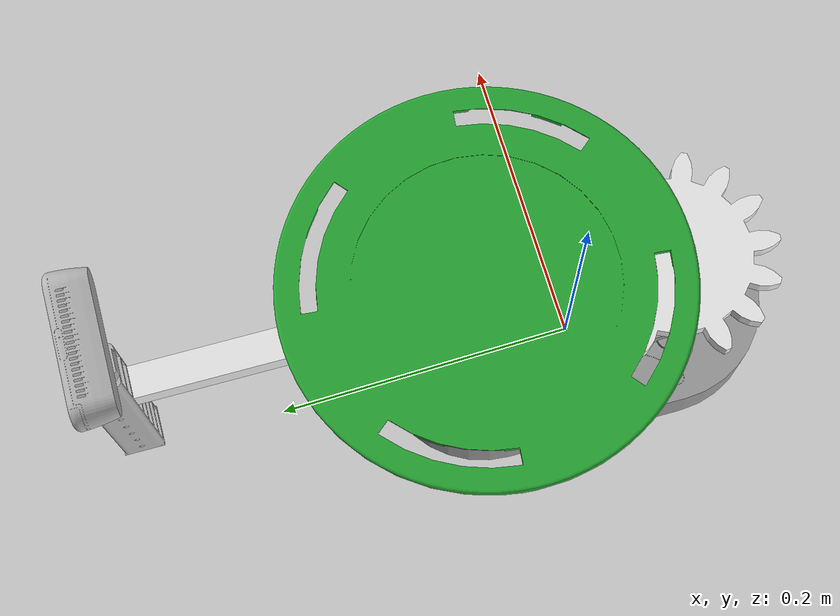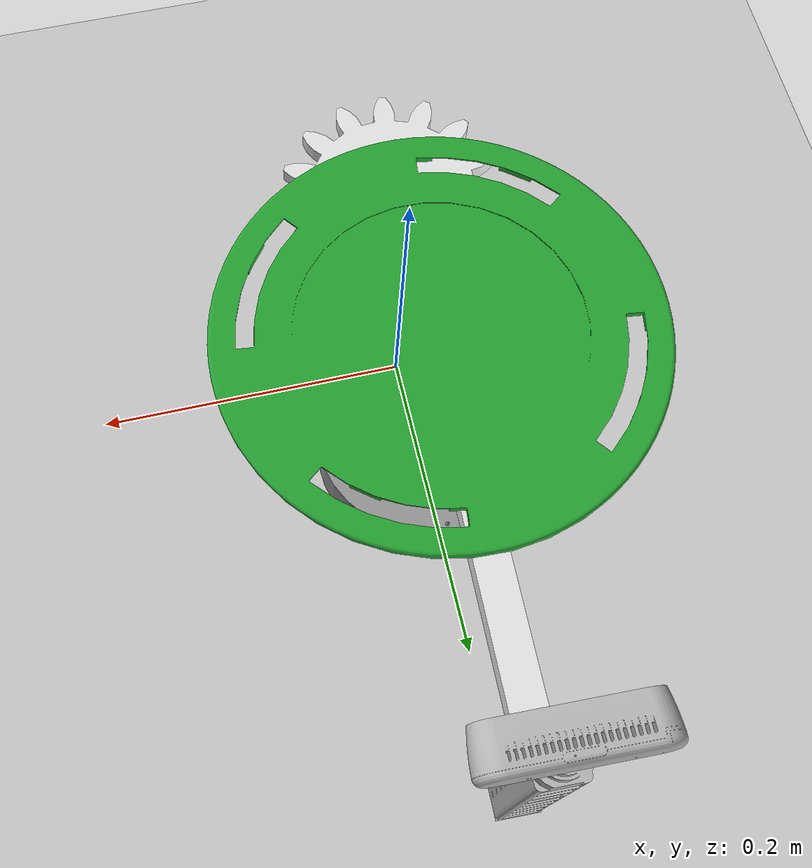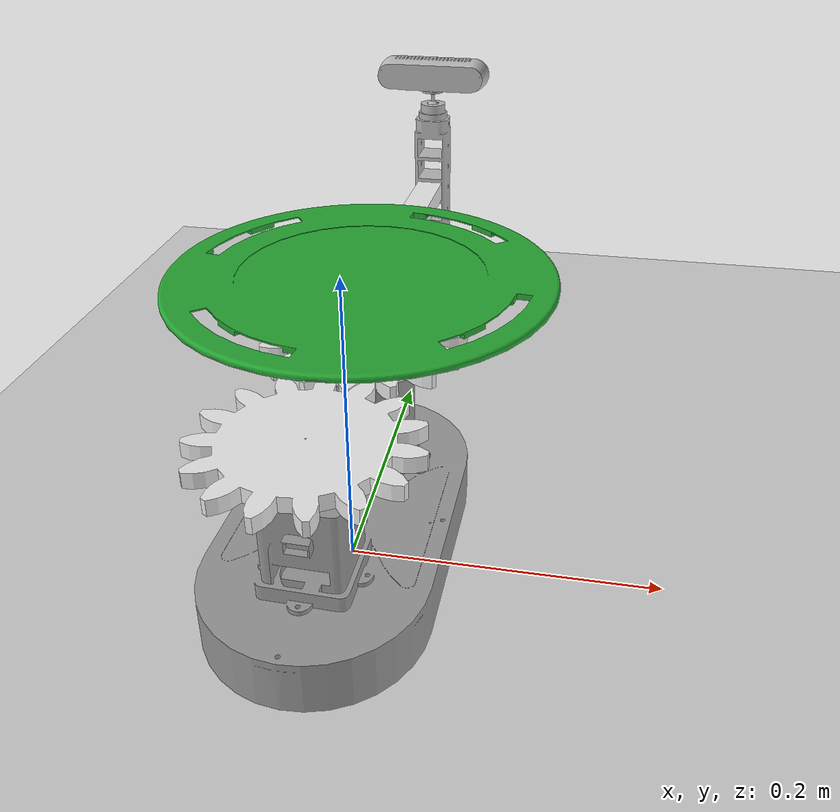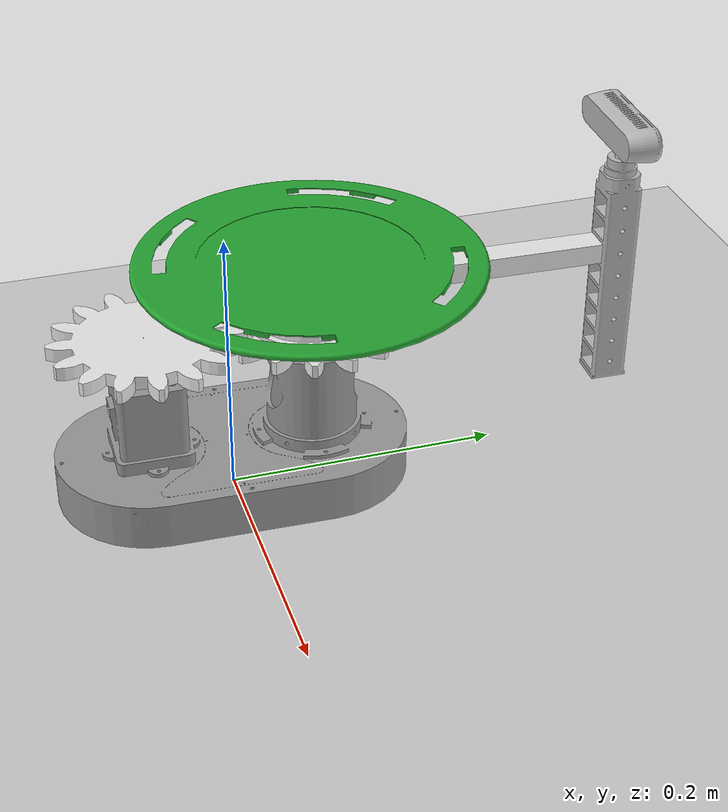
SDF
<sdf version="1.7">
 <world name="default">
  <light name="sun" type="directional">
   <pose>0 0 10 0 -0 0</pose>
   <diffuse>0.8 0.8 0.8 1</diffuse>
   <specular>0.2 0.2 0.2 1</specular>
   <attenuation>
    <range>1000</range>
    <constant>0.9</constant>
    <linear>0.01</linear>
    <quadratic>0.001</quadratic>
   </attenuation>
   <direction>-0.5 0.1 -0.9</direction>
   <spot><inner_angle>0</inner_angle><outer_angle>0</outer_angle><falloff>0</falloff></spot>
  </light>
  <model name="ground_plane">
   <static>1</static>
   <link name="link">
    <collision name="collision">
     <geometry><plane><normal>0 0 1</normal><size>100 100</size></plane></geometry>
     <surface>
      <contact><collide_bitmask>65535</collide_bitmask></contact>
      <friction><ode><mu>100</mu><mu2>50</mu2></ode></friction>
     </surface>
    </collision>
    <visual name="visual">
     <cast_shadows>0</cast_shadows>
     <geometry><plane><normal>0 0 1</normal><size>100 100</size></plane></geometry>
     <material>
      <script><uri>file://media/materials/scripts/gazebo.material</uri><name>Gazebo/Grey</name></script>
     </material>
    </visual>
   </link>
  </model>
  <gravity>0 0 -9.8</gravity>
  <magnetic_field>6e-06 2.3e-05 -4.2e-05</magnetic_field>
  <atmosphere type="adiabatic"/>
  <physics type="ode">
   <max_step_size>0.001</max_step_size>
   <real_time_factor>1</real_time_factor>
   <real_time_update_rate>1000</real_time_update_rate>
  </physics>
  <scene><ambient>0.4 0.4 0.4 1</ambient><background>0.7 0.7 0.7 1</background><shadows>1</shadows></scene>
  <spherical_coordinates>
   <surface_model>EARTH_WGS84</surface_model>
   <latitude_deg>0</latitude_deg>
   <longitude_deg>0</longitude_deg>
   <elevation>0</elevation>
   <heading_deg>0</heading_deg>
  </spherical_coordinates>
  <model name="scanner_3d_new">
   <link name="dummy">
    <inertial>
     <pose>0.000351 0.005724 0.041691 0 -0 0</pose>
     <mass>0.844175</mass>
     <inertia>
      <ixx>0.00325337</ixx>
      <ixy>-1.21224e-08</ixy>
      <ixz>-3.30766e-06</ixz>
      <iyy>0.00117607</iyy>
      <iyz>-4.1475e-08</iyz>
      <izz>0.00418042</izz>
     </inertia>
    </inertial>
    <collision name="dummy_fixed_joint_lump__base_link_collision">
     <geometry>
      <mesh>
       <scale>1 1 1</scale>
       <uri>/home/live4jesus/ncat_kinovaGen3_catkin_ws/src/scanner_3d_new/meshes/base_link.STL</uri>
      </mesh>
     </geometry>
    </collision>
    <visual name="dummy_fixed_joint_lump__base_link_visual">
     <geometry>
      <mesh>
       <scale>1 1 1</scale>
       <uri>/home/live4jesus/ncat_kinovaGen3_catkin_ws/src/scanner_3d_new/meshes/base_link.STL</uri>
      </mesh>
     </geometry>
     <material>
      <script><name>Gazebo/Gray</name><uri>file://media/materials/scripts/gazebo.material</uri></script>
     </material>
    </visual>
   </link>
   <joint name="joint_1" type="revolute">
    <pose relative_to="dummy">0 -0.06 0.125 0 -0 0</pose>
    <parent>dummy</parent>
    <child>link_1</child>
    <axis>
     <xyz>0 0 -1</xyz>
     <limit><effort>10</effort><velocity>5</velocity><lower>-1e+16</lower><upper>1e+16</upper></limit>
     <dynamics><spring_reference>0</spring_reference><spring_stiffness>0</spring_stiffness></dynamics>
    </axis>
   </joint>
   <link name="link_1">
    <pose relative_to="joint_1">0 0 0 0 -0 0</pose>
    <inertial>
     <pose>1e-06 -0 -0.000476 0 -0 0</pose>
     <mass>0.114546</mass>
     <inertia>
      <ixx>9.99335e-05</ixx>
      <ixy>1.86864e-11</ixy>
      <ixz>5.22432e-10</ixz>
      <iyy>9.99337e-05</iyy>
      <iyz>-5.12278e-11</iyz>
      <izz>0.00019798</izz>
     </inertia>
    </inertial>
    <collision name="link_1_collision">
     <geometry>
      <mesh>
       <scale>1 1 1</scale>
       <uri>/home/live4jesus/ncat_kinovaGen3_catkin_ws/src/scanner_3d_new/meshes/link_1.STL</uri>
      </mesh>
     </geometry>
    </collision>
    <visual name="link_1_visual">
     <geometry>
      <mesh>
       <scale>1 1 1</scale>
       <uri>/home/live4jesus/ncat_kinovaGen3_catkin_ws/src/scanner_3d_new/meshes/link_1.STL</uri>
      </mesh>
     </geometry>
     <material>
      <script><name>Gazebo/White</name><uri>file://media/materials/scripts/gazebo.material</uri></script>
     </material>
    </visual>
   </link>
   <joint name="joint_2" type="revolute">
    <pose relative_to="dummy">0 0.06 0.125 0 -0 0</pose>
    <parent>dummy</parent>
    <child>link_2</child>
    <axis>
     <xyz>0 0 1</xyz>
     <limit><effort>10</effort><velocity>5</velocity><lower>-1e+16</lower><upper>1e+16</upper></limit>
     <dynamics><spring_reference>0</spring_reference><spring_stiffness>0</spring_stiffness></dynamics>
    </axis>
   </joint>
   <link name="link_2">
    <pose relative_to="joint_2">0 0 0 0 -0 0</pose>
    <inertial>
     <pose>-0 0.09095 0.012895 0 -0 0</pose>
     <mass>0.179963</mass>
     <inertia>
      <ixx>0.00197844</ixx>
      <ixy>5.08997e-12</ixy>
      <ixz>2.55475e-12</ixz>
      <iyy>0.000230755</iyy>
      <iyz>-4.10824e-05</iyz>
      <izz>0.00197874</izz>
     </inertia>
    </inertial>
    <collision name="link_2_collision">
     <geometry>
      <mesh>
       <scale>1 1 1</scale>
       <uri>/home/live4jesus/ncat_kinovaGen3_catkin_ws/src/scanner_3d_new/meshes/link_2.STL</uri>
      </mesh>
     </geometry>
    </collision>
    <collision name="link_2_fixed_joint_lump__link_4_collision_1">
     <pose>0 0.24185 0.0275 0 -0 0</pose>
     <geometry>
      <mesh>
       <scale>1 1 1</scale>
       <uri>/home/live4jesus/ncat_kinovaGen3_catkin_ws/src/scanner_3d_new/meshes/link_4.STL</uri>
      </mesh>
     </geometry>
    </collision>
    <visual name="link_2_visual">
     <geometry>
      <mesh>
       <scale>1 1 1</scale>
       <uri>/home/live4jesus/ncat_kinovaGen3_catkin_ws/src/scanner_3d_new/meshes/link_2.STL</uri>
      </mesh>
     </geometry>
     <material>
      <script><name>Gazebo/White</name><uri>file://media/materials/scripts/gazebo.material</uri></script>
     </material>
    </visual>
    <visual name="link_2_fixed_joint_lump__link_4_visual_1">
     <pose>0 0.24185 0.0275 0 -0 0</pose>
     <geometry>
      <mesh>
       <scale>1 1 1</scale>
       <uri>/home/live4jesus/ncat_kinovaGen3_catkin_ws/src/scanner_3d_new/meshes/link_4.STL</uri>
      </mesh>
     </geometry>
    </visual>
   </link>
   <joint name="joint_5" type="revolute">
    <pose relative_to="link_2">0 0.22875 0.09625 0 -0 0</pose>
    <parent>link_2</parent>
    <child>link_5</child>
    <axis>
     <xyz>0 0 1</xyz>
     <limit><effort>10</effort><velocity>5</velocity><lower>-1e+16</lower><upper>1e+16</upper></limit>
     <dynamics><spring_reference>0</spring_reference><spring_stiffness>0</spring_stiffness></dynamics>
    </axis>
   </joint>
   <link name="link_5">
    <pose relative_to="joint_5">0 0 0 0 -0 0</pose>
    <inertial>
     <pose>-0 0 0.006835 0 -0 0</pose>
     <mass>0.0111635</mass>
     <inertia>
      <ixx>6.15728e-08</ixx>
      <ixy>1.47487e-41</ixy>
      <ixz>4.0739e-24</ixz>
      <iyy>6.15728e-08</iyy>
      <iyz>-2.95268e-29</iyz>
      <izz>2.60459e-08</izz>
     </inertia>
    </inertial>
    <collision name="link_5_collision">
     <geometry>
      <mesh>
       <scale>1 1 1</scale>
       <uri>/home/live4jesus/ncat_kinovaGen3_catkin_ws/src/scanner_3d_new/meshes/link_5.STL</uri>
      </mesh>
     </geometry>
    </collision>
    <visual name="link_5_visual">
     <geometry>
      <mesh>
       <scale>1 1 1</scale>
       <uri>/home/live4jesus/ncat_kinovaGen3_catkin_ws/src/scanner_3d_new/meshes/link_5.STL</uri>
      </mesh>
     </geometry>
    </visual>
   </link>
   <joint name="joint_6" type="revolute">
    <pose relative_to="link_5">0 -0.0022 0.0265 0 -0 0</pose>
    <parent>link_5</parent>
    <child>link_6</child>
    <axis>
     <xyz>-1 0 0</xyz>
     <limit><effort>10</effort><velocity>5</velocity><lower>-1e+16</lower><upper>1e+16</upper></limit>
     <dynamics><spring_reference>0</spring_reference><spring_stiffness>0</spring_stiffness></dynamics>
    </axis>
   </joint>
   <link name="link_6">
    <pose relative_to="joint_6">0 0 0 0 -0 0</pose>
    <inertial>
     <pose>0.000163 0.00307 -0.000872 0 -0 0</pose>
     <mass>0.0644521</mass>
     <inertia>
      <ixx>5.24563e-06</ixx>
      <ixy>-2.07171e-07</ixy>
      <ixz>-6.06634e-09</ixz>
      <iyy>3.16674e-05</iyy>
      <iyz>3.04727e-07</iyz>
      <izz>3.27606e-05</izz>
     </inertia>
    </inertial>
    <collision name="link_6_collision">
     <geometry>
      <mesh>
       <scale>1 1 1</scale>
       <uri>/home/live4jesus/ncat_kinovaGen3_catkin_ws/src/scanner_3d_new/meshes/link_6.STL</uri>
      </mesh>
     </geometry>
    </collision>
    <visual name="link_6_visual">
     <geometry>
      <mesh>
       <scale>1 1 1</scale>
       <uri>/home/live4jesus/ncat_kinovaGen3_catkin_ws/src/scanner_3d_new/meshes/link_6.STL</uri>
      </mesh>
     </geometry>
    </visual>
    <sensor name="rgbd_camera1_frame_sensor" type="depth">
     <always_on>1</always_on>
     <update_rate>6</update_rate>
     <camera>
      <horizontal_fov>1.01229</horizontal_fov>
      <image><format>R8G8B8</format><width>800</width><height>600</height></image>
      <clip><near>0.05</near><far>5</far></clip>
     </camera>
     <plugin name="rgbd_camera1_frame_controller" filename="libgazebo_ros_openni_kinect.so">
      <alwaysOn>1</alwaysOn>
      <updateRate>6.0</updateRate>
      <cameraName>rgbd_camera1</cameraName>
      <imageTopicName>ir/image_raw</imageTopicName>
      <cameraInfoTopicName>ir/camera_info</cameraInfoTopicName>
      <depthImageTopicName>depth/image_raw</depthImageTopicName>
      <depthImageCameraInfoTopicName>depth/camera_info</depthImageCameraInfoTopicName>
      <pointCloudTopicName>depth/points</pointCloudTopicName>
      <frameName>rgbd_camera1_optical_frame</frameName>
      <pointCloudCutoff>0.05</pointCloudCutoff>
      <pointCloudCutoffMax>5</pointCloudCutoffMax>
      <rangeMax>5</rangeMax>
      <robotNamespace>/</robotNamespace>
     </plugin>
     <pose>0 0 0 -0.001593 0.001593 -1.57159</pose>
    </sensor>
    <sensor name="rgbd_camera1_frame_sensor" type="depth">
     <always_on>1</always_on>
     <update_rate>6</update_rate>
     <camera>
      <horizontal_fov>1.01229</horizontal_fov>
      <image><format>R8G8B8</format><width>800</width><height>600</height></image>
      <clip><near>0.05</near><far>5</far></clip>
     </camera>
     <plugin name="rgbd_camera1_frame_controller" filename="libgazebo_ros_openni_kinect.so">
      <alwaysOn>1</alwaysOn>
      <updateRate>6.0</updateRate>
      <cameraName>rgbd_camera1</cameraName>
      <imageTopicName>rgb/image_raw</imageTopicName>
      <cameraInfoTopicName>rgb/camera_info</cameraInfoTopicName>
      <pointCloudTopicName>rgb/points</pointCloudTopicName>
      <depthImageTopicName>depth/image_raw</depthImageTopicName>
      <depthImageCameraInfoTopicName>depth/camera_info</depthImageCameraInfoTopicName>
      <frameName>rgbd_camera1_optical_frame</frameName>
      <pointCloudCutoff>0.05</pointCloudCutoff>
      <pointCloudCutoffMax>5</pointCloudCutoffMax>
      <rangeMax>5</rangeMax>
      <robotNamespace>/</robotNamespace>
     </plugin>
     <pose>0 0 0 -0.001593 0.001593 -1.57159</pose>
    </sensor>
   </link>
   <joint name="joint_3" type="revolute">
    <pose relative_to="dummy">0 0.06 0.137 0 -0 0</pose>
    <parent>dummy</parent>
    <child>link_3</child>
    <axis>
     <xyz>0 0 1</xyz>
     <limit><effort>10</effort><velocity>5</velocity><lower>-1e+16</lower><upper>1e+16</upper></limit>
     <dynamics><spring_reference>0</spring_reference><spring_stiffness>0</spring_stiffness></dynamics>
    </axis>
   </joint>
   <link name="link_3">
    <pose relative_to="joint_3">0 0 0 0 -0 0</pose>
    <inertial>
     <pose>-0 -0 0.031314 0 -0 0</pose>
     <mass>0.165079</mass>
     <inertia>
      <ixx>0.00046672</ixx>
      <ixy>-7.29772e-09</ixy>
      <ixz>-2.93963e-10</ixz>
      <iyy>0.000466697</iyy>
      <iyz>-4.36207e-10</iyz>
      <izz>0.000931288</izz>
     </inertia>
    </inertial>
    <collision name="link_3_collision">
     <geometry>
      <mesh>
       <scale>1 1 1</scale>
       <uri>/home/live4jesus/ncat_kinovaGen3_catkin_ws/src/scanner_3d_new/meshes/link_3.STL</uri>
      </mesh>
     </geometry>
    </collision>
    <visual name="link_3_visual">
     <geometry>
      <mesh>
       <scale>1 1 1</scale>
       <uri>/home/live4jesus/ncat_kinovaGen3_catkin_ws/src/scanner_3d_new/meshes/link_3.STL</uri>
      </mesh>
     </geometry>
     <material>
      <script><name>Gazebo/Green</name><uri>file://media/materials/scripts/gazebo.material</uri></script>
     </material>
    </visual>
   </link>
   <plugin name="control" filename="libgazebo_ros_control.so"><robotNamespace>/</robotNamespace></plugin>
   <plugin name="joint_state_publisher" filename="libgazebo_ros_joint_state_publisher.so">
    <robotNamespace>/</robotNamespace>
   </plugin>
   <frame name="dummy_joint" attached_to="dummy"/>
   <frame name="base_link" attached_to="dummy_joint"/>
   <frame name="joint_4" attached_to="link_2"><pose>0 0.24185 0.0275 0 -0 0</pose></frame>
   <frame name="link_4" attached_to="joint_4"/>
   <frame name="rgbd_camera1_depth_optical_joint" attached_to="rgbd_camera1_depth_frame">
    <pose>0 0 0 -1.5708 -0 -1.5708</pose>
   </frame>
   <frame name="rgbd_camera1_depth_optical_frame" attached_to="rgbd_camera1_depth_optical_joint"/>
   <frame name="rgbd_camera1_depth_joint" attached_to="rgbd_camera1"><pose>0 0.049 0 0 -0 0</pose></frame>
   <frame name="rgbd_camera1_depth_frame" attached_to="rgbd_camera1_depth_joint"/>
   <frame name="rgbd_camera1_optical_joint" attached_to="rgbd_camera1"><pose>0 0 0 -1.57 -0 -1.57</pose></frame>
   <frame name="rgbd_camera1_optical_frame" attached_to="rgbd_camera1_optical_joint"/>
   <frame name="rgbd_camera1_rgb_optical_joint" attached_to="rgbd_camera1_rgb_frame">
    <pose>0 0 0 -1.5708 -0 -1.5708</pose>
   </frame>
   <frame name="rgbd_camera1_rgb_optical_frame" attached_to="rgbd_camera1_rgb_optical_joint"/>
   <frame name="rgbd_camera1_rgb_joint" attached_to="rgbd_camera1"><pose>0 0.022 0 0 -0 0</pose></frame>
   <frame name="rgbd_camera1_rgb_frame" attached_to="rgbd_camera1_rgb_joint"/>
   <frame name="rgbd_camera1_joint" attached_to="link_6"><pose>0 0 0 -0.001593 0.001593 -1.57159</pose></frame>
   <frame name="rgbd_camera1" attached_to="rgbd_camera1_joint"/>
   <pose>-0.00521 0.001699 -1e-06 -5e-06 -2.3e-05 -0.027695</pose>
  </model>
 </world>
</sdf>
